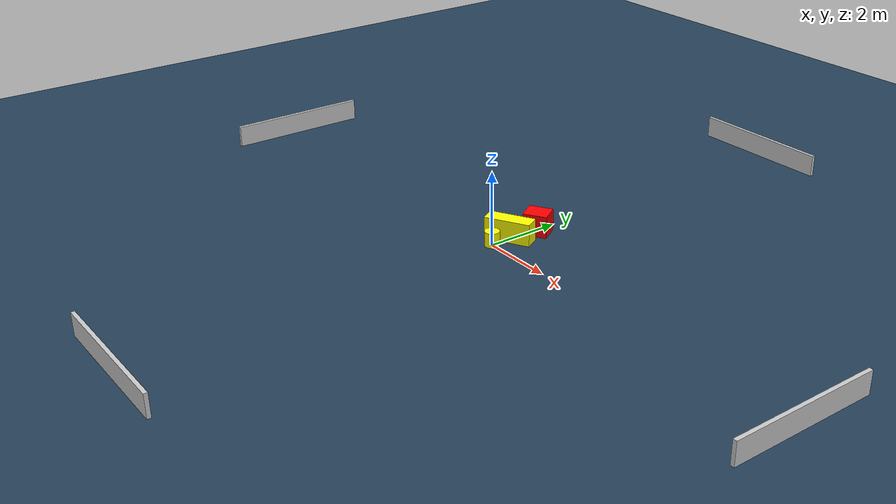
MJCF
<?xml version="1.0" ?>
<mujoco model="generated_environment">
  <option timestep="0.01" integrator="RK4" cone="elliptic"/>
  <default>
    <geom density="1"/>
  </default>
  <asset>
    <texture builtin="gradient" height="3072" name="skybox" rgb1="0.3 0.5 0.7" rgb2="0 0 0" type="skybox" width="512"/>
    <texture builtin="checker" height="300" name="groundplane" rgb1="0.2 0.3 0.4" rgb2="0.1 0.2 0.3" type="2d" width="300"/>
    <material name="groundplane" reflectance="0.2" texrepeat="5 5" texture="groundplane"/>
  </asset>
  <worldbody>
    <light dir="0 0 -1" directional="true" pos="0 0 1.5"/>
    <geom condim="3" friction="0.5 0.005 0.001" material="groundplane" name="floor" pos="0 0 0" size="0 0 0.05" type="plane"/>
    <body name="walls">
      <geom name="wall_1" condim="4" pos="-10.0 0.0 0.3" rgba="0.800000011920929 0.800000011920929 0.800000011920929 1.0" size="0.05 2.0 0.3" type="box"/>
      <geom name="wall_2" condim="4" pos="10.0 0.0 0.3" rgba="0.800000011920929 0.800000011920929 0.800000011920929 1.0" size="0.05 2.0 0.3" type="box"/>
      <geom name="wall_3" condim="4" pos="0.0 -10.0 0.3" rgba="0.800000011920929 0.800000011920929 0.800000011920929 1.0" size="2.0 0.05 0.3" type="box"/>
      <geom name="wall_4" condim="4" pos="0.0 10.0 0.3" rgba="0.800000011920929 0.800000011920929 0.800000011920929 1.0" size="2.0 0.05 0.3" type="box"/>
    </body>
    <body name="robot">
      <joint name="joint_x" type="slide" pos="0 0 0" axis="1 0 0"/>
      <joint name="joint_y" type="slide" pos="0 0 0" axis="0 1 0"/>
      <geom name="robot" type="cylinder" pos="0.0 0.0 0.2" size="0.2 0.2 0.0" mass="5.0" friction="1.0 0.005 0.0001" condim="4" rgba="1.0 1.0 0.0 1.0"/>
    </body>
    <body name="obstacle_1_movable">
      <geom name="obstacle_1_movable" condim="4" pos="0.002063912462041133 0.5629838592082329 0.3" euler="0 0 298.90682626540996" friction="0.0 0.005 0.001" rgba="1.0 1.0 0.0 1.0" size="0.21546533178036845 0.6245433424575146 0.3" type="box" mass="0.1"/>
      <joint type="free"/>
    </body>
    <body name="obstacle_2_static">
      <geom name="obstacle_2_static" condim="4" pos="0.12770005520939076 1.388414875673372 0.3" euler="0 0 301.91870724358427" friction="0.0 0.005 0.001" rgba="1.0 0.0 0.0 1.0" size="0.28124931387194363 0.32524723904353503 0.3" type="box"/>
    </body>
  </worldbody>
  <actuator>
    <motor name="actuator_x" joint="joint_x" gear="1" ctrlrange="-1 1"/>
    <motor name="actuator_y" joint="joint_y" gear="1" ctrlrange="-1 1"/>
  </actuator>
</mujoco>
